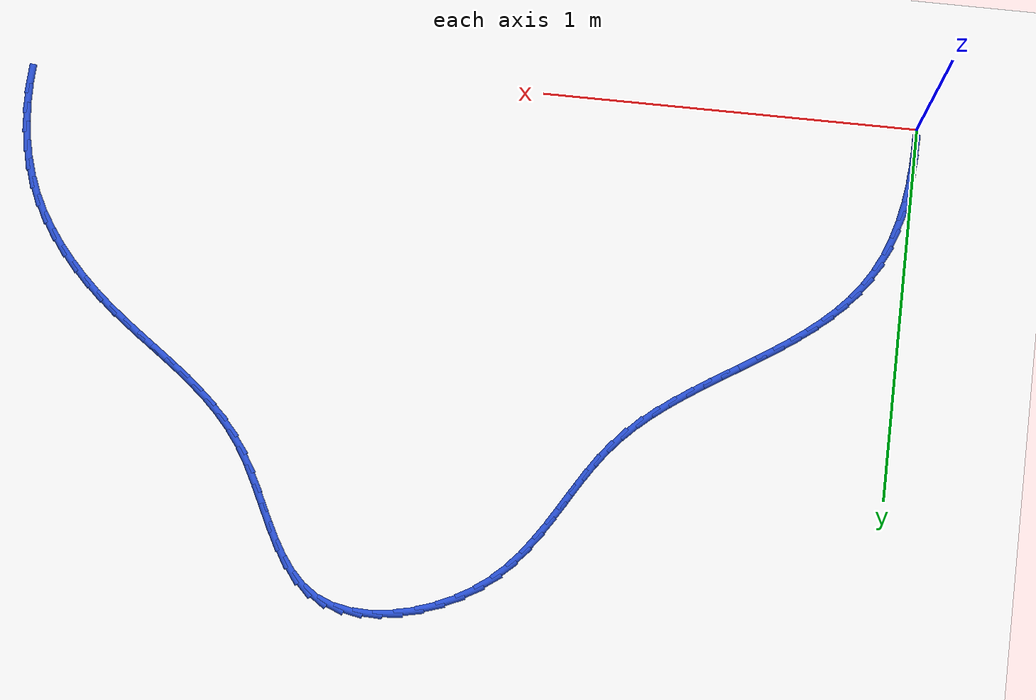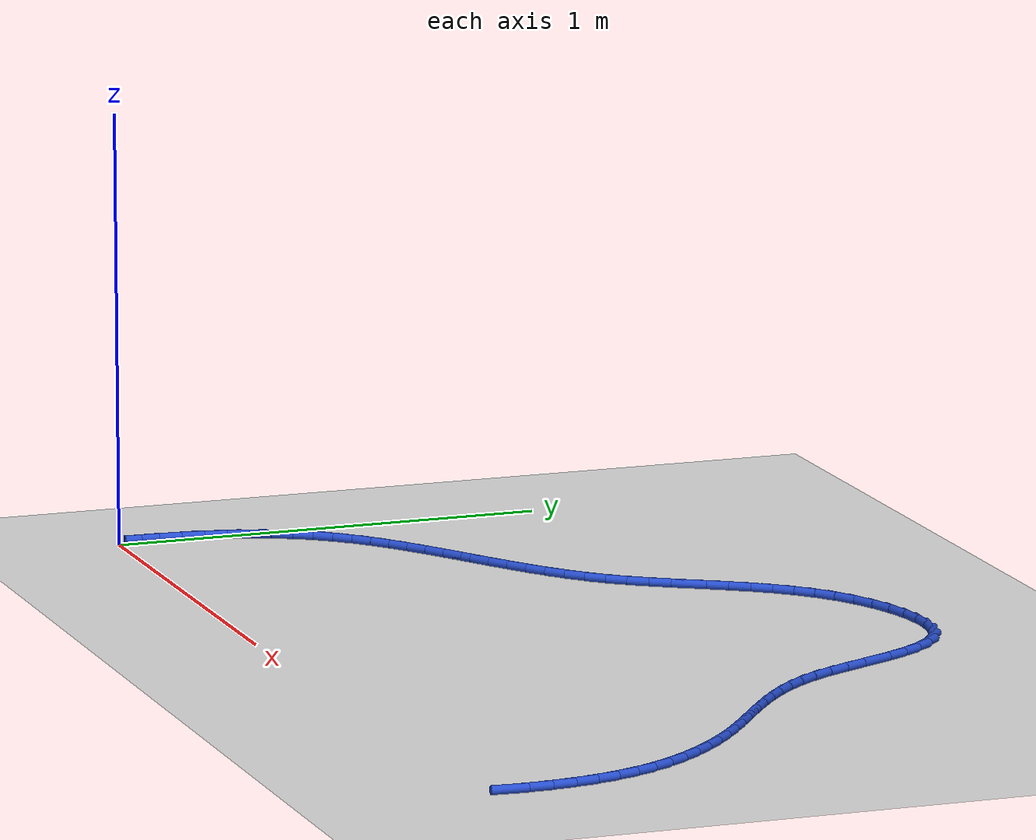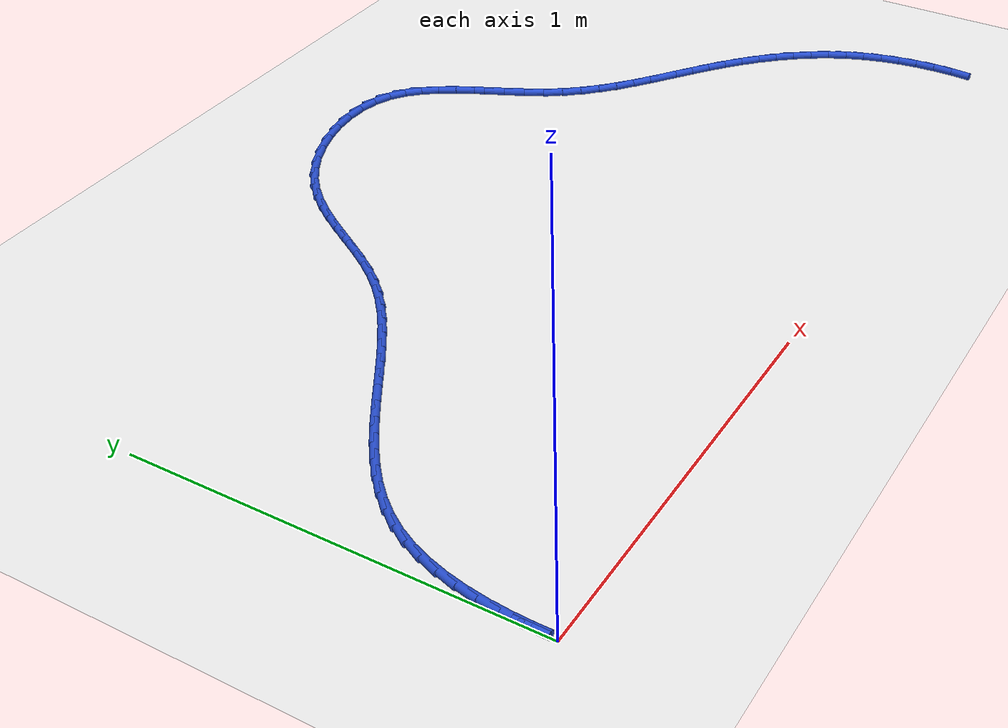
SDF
<sdf version="1.6">
 <world name="default">
  <model name="ground_plane">
   <static>1</static>
   <link name="link">
    <collision name="collision">
     <geometry><plane><normal>0 0 1</normal><size>100 100</size></plane></geometry>
     <surface><friction><ode><mu>100</mu><mu2>50</mu2></ode></friction></surface>
    </collision>
    <visual name="visual">
     <cast_shadows>0</cast_shadows>
     <geometry><plane><normal>0 0 1</normal><size>100 100</size></plane></geometry>
     <material>
      <script><uri>file://media/materials/scripts/gazebo.material</uri><name>Gazebo/WhiteGlow</name></script>
     </material>
    </visual>
   </link>
  </model>
  <model name="line">
   <link name="link_1">
    <pose>6.664217000441556e-05 0.05335885717946945 0.01 0 1.57 1.5253324503397185</pose>
    <collision name="collision">
     <geometry><cylinder><radius>0.01</radius><length>0.08</length></cylinder></geometry>
    </collision>
    <visual name="visual">
     <material>
      <script><name>Gazebo/Blue</name><uri>file://media/materials/scripts/gazebo.material</uri></script>
     </material>
     <geometry><cylinder><radius>0.01</radius><length>0.08</length></cylinder></geometry>
    </visual>
   </link>
   <link name="link_2">
    <pose>0.0024877650991116233 0.1065759333099808 0.01 0 1.57 1.4750725910085734</pose>
    <collision name="collision">
     <geometry><cylinder><radius>0.01</radius><length>0.08</length></cylinder></geometry>
    </collision>
    <visual name="visual">
     <material>
      <script><name>Gazebo/Blue</name><uri>file://media/materials/scripts/gazebo.material</uri></script>
     </material>
     <geometry><cylinder><radius>0.01</radius><length>0.08</length></cylinder></geometry>
    </visual>
   </link>
   <link name="link_3">
    <pose>0.007543831695108891 0.15923386755550145 0.01 0 1.57 1.4177598399902247</pose>
    <collision name="collision">
     <geometry><cylinder><radius>0.01</radius><length>0.08</length></cylinder></geometry>
    </collision>
    <visual name="visual">
     <material>
      <script><name>Gazebo/Blue</name><uri>file://media/materials/scripts/gazebo.material</uri></script>
     </material>
     <geometry><cylinder><radius>0.01</radius><length>0.08</length></cylinder></geometry>
    </visual>
   </link>
   <link name="link_4">
    <pose>0.01551530486578349 0.2109152990799988 0.01 0 1.57 1.3522727773023824</pose>
    <collision name="collision">
     <geometry><cylinder><radius>0.01</radius><length>0.08</length></cylinder></geometry>
    </collision>
    <visual name="visual">
     <material>
      <script><name>Gazebo/Blue</name><uri>file://media/materials/scripts/gazebo.material</uri></script>
     </material>
     <geometry><cylinder><radius>0.01</radius><length>0.08</length></cylinder></geometry>
    </visual>
   </link>
   <link name="link_5">
    <pose>0.02668264751892268 0.2612028670474401 0.01 0 1.57 1.2774334815352066</pose>
    <collision name="collision">
     <geometry><cylinder><radius>0.01</radius><length>0.08</length></cylinder></geometry>
    </collision>
    <visual name="visual">
     <material>
      <script><name>Gazebo/Blue</name><uri>file://media/materials/scripts/gazebo.material</uri></script>
     </material>
     <geometry><cylinder><radius>0.01</radius><length>0.08</length></cylinder></geometry>
    </visual>
   </link>
   <link name="link_6">
    <pose>0.04132632256231374 0.3096792106217928 0.01 0 1.57 1.1921298426804492</pose>
    <collision name="collision">
     <geometry><cylinder><radius>0.01</radius><length>0.08</length></cylinder></geometry>
    </collision>
    <visual name="visual">
     <material>
      <script><name>Gazebo/Blue</name><uri>file://media/materials/scripts/gazebo.material</uri></script>
     </material>
     <geometry><cylinder><radius>0.01</radius><length>0.08</length></cylinder></geometry>
    </visual>
   </link>
   <link name="link_7">
    <pose>0.059726792903743955 0.35592696896702414 0.01 0 1.57 1.0955327764226392</pose>
    <collision name="collision">
     <geometry><cylinder><radius>0.01</radius><length>0.08</length></cylinder></geometry>
    </collision>
    <visual name="visual">
     <material>
      <script><name>Gazebo/Blue</name><uri>file://media/materials/scripts/gazebo.material</uri></script>
     </material>
     <geometry><cylinder><radius>0.01</radius><length>0.08</length></cylinder></geometry>
    </visual>
   </link>
   <link name="link_8">
    <pose>0.08216452145100056 0.3995287812471016 0.01 0 1.57 0.9894931462684846</pose>
    <collision name="collision">
     <geometry><cylinder><radius>0.01</radius><length>0.08</length></cylinder></geometry>
    </collision>
    <visual name="visual">
     <material>
      <script><name>Gazebo/Blue</name><uri>file://media/materials/scripts/gazebo.material</uri></script>
     </material>
     <geometry><cylinder><radius>0.01</radius><length>0.08</length></cylinder></geometry>
    </visual>
   </link>
   <link name="link_9">
    <pose>0.10884792280902796 0.440140770804454 0.01 0 1.57 0.8891535947270818</pose>
    <collision name="collision">
     <geometry><cylinder><radius>0.01</radius><length>0.08</length></cylinder></geometry>
    </collision>
    <visual name="visual">
     <material>
      <script><name>Gazebo/Blue</name><uri>file://media/materials/scripts/gazebo.material</uri></script>
     </material>
     <geometry><cylinder><radius>0.01</radius><length>0.08</length></cylinder></geometry>
    </visual>
   </link>
   <link name="link_10">
    <pose>0.13949811685095032 0.4779160671790674 0.01 0 1.57 0.8021239914455112</pose>
    <collision name="collision">
     <geometry><cylinder><radius>0.01</radius><length>0.08</length></cylinder></geometry>
    </collision>
    <visual name="visual">
     <material>
      <script><name>Gazebo/Blue</name><uri>file://media/materials/scripts/gazebo.material</uri></script>
     </material>
     <geometry><cylinder><radius>0.01</radius><length>0.08</length></cylinder></geometry>
    </visual>
   </link>
   <link name="link_11">
    <pose>0.1736343247894883 0.5132137222797671 0.01 0 1.57 0.7291288467077437</pose>
    <collision name="collision">
     <geometry><cylinder><radius>0.01</radius><length>0.08</length></cylinder></geometry>
    </collision>
    <visual name="visual">
     <material>
      <script><name>Gazebo/Blue</name><uri>file://media/materials/scripts/gazebo.material</uri></script>
     </material>
     <geometry><cylinder><radius>0.01</radius><length>0.08</length></cylinder></geometry>
    </visual>
   </link>
   <link name="link_12">
    <pose>0.21077512020834177 0.5463934485512226 0.01 0 1.57 0.6699624332969081</pose>
    <collision name="collision">
     <geometry><cylinder><radius>0.01</radius><length>0.08</length></cylinder></geometry>
    </collision>
    <visual name="visual">
     <material>
      <script><name>Gazebo/Blue</name><uri>file://media/materials/scripts/gazebo.material</uri></script>
     </material>
     <geometry><cylinder><radius>0.01</radius><length>0.08</length></cylinder></geometry>
    </visual>
   </link>
   <link name="link_13">
    <pose>0.2504390766912106 0.5778149584381033 0.01 0 1.57 0.6239426441694352</pose>
    <collision name="collision">
     <geometry><cylinder><radius>0.01</radius><length>0.08</length></cylinder></geometry>
    </collision>
    <visual name="visual">
     <material>
      <script><name>Gazebo/Blue</name><uri>file://media/materials/scripts/gazebo.material</uri></script>
     </material>
     <geometry><cylinder><radius>0.01</radius><length>0.08</length></cylinder></geometry>
    </visual>
   </link>
   <link name="link_14">
    <pose>0.29214476782179455 0.6078379643850781 0.01 0 1.57 0.5902428545565552</pose>
    <collision name="collision">
     <geometry><cylinder><radius>0.01</radius><length>0.08</length></cylinder></geometry>
    </collision>
    <visual name="visual">
     <material>
      <script><name>Gazebo/Blue</name><uri>file://media/materials/scripts/gazebo.material</uri></script>
     </material>
     <geometry><cylinder><radius>0.01</radius><length>0.08</length></cylinder></geometry>
    </visual>
   </link>
   <link name="link_15">
    <pose>0.33541076718379365 0.6368221788368166 0.01 0 1.57 0.5681030035859348</pose>
    <collision name="collision">
     <geometry><cylinder><radius>0.01</radius><length>0.08</length></cylinder></geometry>
    </collision>
    <visual name="visual">
     <material>
      <script><name>Gazebo/Blue</name><uri>file://media/materials/scripts/gazebo.material</uri></script>
     </material>
     <geometry><cylinder><radius>0.01</radius><length>0.08</length></cylinder></geometry>
    </visual>
   </link>
   <link name="link_16">
    <pose>0.3797556483609077 0.6651273142379881 0.01 0 1.57 0.5569464916758549</pose>
    <collision name="collision">
     <geometry><cylinder><radius>0.01</radius><length>0.08</length></cylinder></geometry>
    </collision>
    <visual name="visual">
     <material>
      <script><name>Gazebo/Blue</name><uri>file://media/materials/scripts/gazebo.material</uri></script>
     </material>
     <geometry><cylinder><radius>0.01</radius><length>0.08</length></cylinder></geometry>
    </visual>
   </link>
   <link name="link_17">
    <pose>0.4246979849368365 0.6931130830332618 0.01 0 1.57 0.5564360823354563</pose>
    <collision name="collision">
     <geometry><cylinder><radius>0.01</radius><length>0.08</length></cylinder></geometry>
    </collision>
    <visual name="visual">
     <material>
      <script><name>Gazebo/Blue</name><uri>file://media/materials/scripts/gazebo.material</uri></script>
     </material>
     <geometry><cylinder><radius>0.01</radius><length>0.08</length></cylinder></geometry>
    </visual>
   </link>
   <link name="link_18">
    <pose>0.4697563504952801 0.7211391976673073 0.01 0 1.57 0.5664933742057492</pose>
    <collision name="collision">
     <geometry><cylinder><radius>0.01</radius><length>0.08</length></cylinder></geometry>
    </collision>
    <visual name="visual">
     <material>
      <script><name>Gazebo/Blue</name><uri>file://media/materials/scripts/gazebo.material</uri></script>
     </material>
     <geometry><cylinder><radius>0.01</radius><length>0.08</length></cylinder></geometry>
    </visual>
   </link>
   <link name="link_19">
    <pose>0.5144493186199381 0.7495653705847937 0.01 0 1.57 0.5872945978435753</pose>
    <collision name="collision">
     <geometry><cylinder><radius>0.01</radius><length>0.08</length></cylinder></geometry>
    </collision>
    <visual name="visual">
     <material>
      <script><name>Gazebo/Blue</name><uri>file://media/materials/scripts/gazebo.material</uri></script>
     </material>
     <geometry><cylinder><radius>0.01</radius><length>0.08</length></cylinder></geometry>
    </visual>
   </link>
   <link name="link_20">
    <pose>0.5582954628945105 0.7787513142303902 0.01 0 1.57 0.6192442989502459</pose>
    <collision name="collision">
     <geometry><cylinder><radius>0.01</radius><length>0.08</length></cylinder></geometry>
    </collision>
    <visual name="visual">
     <material>
      <script><name>Gazebo/Blue</name><uri>file://media/materials/scripts/gazebo.material</uri></script>
     </material>
     <geometry><cylinder><radius>0.01</radius><length>0.08</length></cylinder></geometry>
    </visual>
   </link>
   <link name="link_21">
    <pose>0.6008133569026974 0.8090567410487669 0.01 0 1.57 0.662918092455319</pose>
    <collision name="collision">
     <geometry><cylinder><radius>0.01</radius><length>0.08</length></cylinder></geometry>
    </collision>
    <visual name="visual">
     <material>
      <script><name>Gazebo/Blue</name><uri>file://media/materials/scripts/gazebo.material</uri></script>
     </material>
     <geometry><cylinder><radius>0.01</radius><length>0.08</length></cylinder></geometry>
    </visual>
   </link>
   <link name="link_22">
    <pose>0.6415215742281982 0.8408413634845918 0.01 0 1.57 0.7189561175364033</pose>
    <collision name="collision">
     <geometry><cylinder><radius>0.01</radius><length>0.08</length></cylinder></geometry>
    </collision>
    <visual name="visual">
     <material>
      <script><name>Gazebo/Blue</name><uri>file://media/materials/scripts/gazebo.material</uri></script>
     </material>
     <geometry><cylinder><radius>0.01</radius><length>0.08</length></cylinder></geometry>
    </visual>
   </link>
   <link name="link_23">
    <pose>0.6799386884547134 0.8744648939825357 0.01 0 1.57 0.787882758871669</pose>
    <collision name="collision">
     <geometry><cylinder><radius>0.01</radius><length>0.08</length></cylinder></geometry>
    </collision>
    <visual name="visual">
     <material>
      <script><name>Gazebo/Blue</name><uri>file://media/materials/scripts/gazebo.material</uri></script>
     </material>
     <geometry><cylinder><radius>0.01</radius><length>0.08</length></cylinder></geometry>
    </visual>
   </link>
   <link name="link_24">
    <pose>0.7155832731659421 0.9102870449872666 0.01 0 1.57 0.8683580052310433</pose>
    <collision name="collision">
     <geometry><cylinder><radius>0.01</radius><length>0.08</length></cylinder></geometry>
    </collision>
    <visual name="visual">
     <material>
      <script><name>Gazebo/Blue</name><uri>file://media/materials/scripts/gazebo.material</uri></script>
     </material>
     <geometry><cylinder><radius>0.01</radius><length>0.08</length></cylinder></geometry>
    </visual>
   </link>
   <link name="link_25">
    <pose>0.74803384354409 0.9486236146467142 0.01 0 1.57 0.9406503862185936</pose>
    <collision name="collision">
     <geometry><cylinder><radius>0.01</radius><length>0.08</length></cylinder></geometry>
    </collision>
    <visual name="visual">
     <material>
      <script><name>Gazebo/Blue</name><uri>file://media/materials/scripts/gazebo.material</uri></script>
     </material>
     <geometry><cylinder><radius>0.01</radius><length>0.08</length></cylinder></geometry>
    </visual>
   </link>
   <link name="link_26">
    <pose>0.7776441356674677 0.9892224602910703 0.01 0 1.57 0.9906803434794265</pose>
    <collision name="collision">
     <geometry><cylinder><radius>0.01</radius><length>0.08</length></cylinder></geometry>
    </collision>
    <visual name="visual">
     <material>
      <script><name>Gazebo/Blue</name><uri>file://media/materials/scripts/gazebo.material</uri></script>
     </material>
     <geometry><cylinder><radius>0.01</radius><length>0.08</length></cylinder></geometry>
    </visual>
   </link>
   <link name="link_27">
    <pose>0.8053079621239113 1.0314357694536997 0.01 0 1.57 1.0182208821904566</pose>
    <collision name="collision">
     <geometry><cylinder><radius>0.01</radius><length>0.08</length></cylinder></geometry>
    </collision>
    <visual name="visual">
     <material>
      <script><name>Gazebo/Blue</name><uri>file://media/materials/scripts/gazebo.material</uri></script>
     </material>
     <geometry><cylinder><radius>0.01</radius><length>0.08</length></cylinder></geometry>
    </visual>
   </link>
   <link name="link_28">
    <pose>0.8319301137915331 1.0746076867744034 0.01 0 1.57 1.0236312018721625</pose>
    <collision name="collision">
     <geometry><cylinder><radius>0.01</radius><length>0.08</length></cylinder></geometry>
    </collision>
    <visual name="visual">
     <material>
      <script><name>Gazebo/Blue</name><uri>file://media/materials/scripts/gazebo.material</uri></script>
     </material>
     <geometry><cylinder><radius>0.01</radius><length>0.08</length></cylinder></geometry>
    </visual>
   </link>
   <link name="link_29">
    <pose>0.8584153815484444 1.1180823568929812 0.01 0 1.57 1.0071734314425185</pose>
    <collision name="collision">
     <geometry><cylinder><radius>0.01</radius><length>0.08</length></cylinder></geometry>
    </collision>
    <visual name="visual">
     <material>
      <script><name>Gazebo/Blue</name><uri>file://media/materials/scripts/gazebo.material</uri></script>
     </material>
     <geometry><cylinder><radius>0.01</radius><length>0.08</length></cylinder></geometry>
    </visual>
   </link>
   <link name="link_30">
    <pose>0.8856685562727566 1.1612039244492327 0.01 0 1.57 0.9689371567399715</pose>
    <collision name="collision">
     <geometry><cylinder><radius>0.01</radius><length>0.08</length></cylinder></geometry>
    </collision>
    <visual name="visual">
     <material>
      <script><name>Gazebo/Blue</name><uri>file://media/materials/scripts/gazebo.material</uri></script>
     </material>
     <geometry><cylinder><radius>0.01</radius><length>0.08</length></cylinder></geometry>
    </visual>
   </link>
   <link name="link_31">
    <pose>0.9145944288425811 1.2033165340829577 0.01 0 1.57 0.9090762703867805</pose>
    <collision name="collision">
     <geometry><cylinder><radius>0.01</radius><length>0.08</length></cylinder></geometry>
    </collision>
    <visual name="visual">
     <material>
      <script><name>Gazebo/Blue</name><uri>file://media/materials/scripts/gazebo.material</uri></script>
     </material>
     <geometry><cylinder><radius>0.01</radius><length>0.08</length></cylinder></geometry>
    </visual>
   </link>
   <link name="link_32">
    <pose>0.9460977901360305 1.2437643304339574 0.01 0 1.57 0.8283394405115861</pose>
    <collision name="collision">
     <geometry><cylinder><radius>0.01</radius><length>0.08</length></cylinder></geometry>
    </collision>
    <visual name="visual">
     <material>
      <script><name>Gazebo/Blue</name><uri>file://media/materials/scripts/gazebo.material</uri></script>
     </material>
     <geometry><cylinder><radius>0.01</radius><length>0.08</length></cylinder></geometry>
    </visual>
   </link>
   <link name="link_33">
    <pose>0.9810834310312156 1.2818914581420313 0.01 0 1.57 0.7288038075218347</pose>
    <collision name="collision">
     <geometry><cylinder><radius>0.01</radius><length>0.08</length></cylinder></geometry>
    </collision>
    <visual name="visual">
     <material>
      <script><name>Gazebo/Blue</name><uri>file://media/materials/scripts/gazebo.material</uri></script>
     </material>
     <geometry><cylinder><radius>0.01</radius><length>0.08</length></cylinder></geometry>
    </visual>
   </link>
   <link name="link_34">
    <pose>1.0204561424062486 1.3170420618469798 0.01 0 1.57 0.6165004382844872</pose>
    <collision name="collision">
     <geometry><cylinder><radius>0.01</radius><length>0.08</length></cylinder></geometry>
    </collision>
    <visual name="visual">
     <material>
      <script><name>Gazebo/Blue</name><uri>file://media/materials/scripts/gazebo.material</uri></script>
     </material>
     <geometry><cylinder><radius>0.01</radius><length>0.08</length></cylinder></geometry>
    </visual>
   </link>
   <link name="link_35">
    <pose>1.0649420999111898 1.3485665454878448 0.01 0 1.57 0.5088439998532955</pose>
    <collision name="collision">
     <geometry><cylinder><radius>0.01</radius><length>0.08</length></cylinder></geometry>
    </collision>
    <visual name="visual">
     <material>
      <script><name>Gazebo/Blue</name><uri>file://media/materials/scripts/gazebo.material</uri></script>
     </material>
     <geometry><cylinder><radius>0.01</radius><length>0.08</length></cylinder></geometry>
    </visual>
   </link>
   <link name="link_36">
    <pose>1.1138762444222594 1.375864066712194 0.01 0 1.57 0.4077946887302013</pose>
    <collision name="collision">
     <geometry><cylinder><radius>0.01</radius><length>0.08</length></cylinder></geometry>
    </collision>
    <visual name="visual">
     <material>
      <script><name>Gazebo/Blue</name><uri>file://media/materials/scripts/gazebo.material</uri></script>
     </material>
     <geometry><cylinder><radius>0.01</radius><length>0.08</length></cylinder></geometry>
    </visual>
   </link>
   <link name="link_37">
    <pose>1.165940986674657 1.3983566500947984 0.01 0 1.57 0.3075145787612556</pose>
    <collision name="collision">
     <geometry><cylinder><radius>0.01</radius><length>0.08</length></cylinder></geometry>
    </collision>
    <visual name="visual">
     <material>
      <script><name>Gazebo/Blue</name><uri>file://media/materials/scripts/gazebo.material</uri></script>
     </material>
     <geometry><cylinder><radius>0.01</radius><length>0.08</length></cylinder></geometry>
    </visual>
   </link>
   <link name="link_38">
    <pose>1.2198149849205389 1.4154664517104956 0.01 0 1.57 0.20228657717183465</pose>
    <collision name="collision">
     <geometry><cylinder><radius>0.01</radius><length>0.08</length></cylinder></geometry>
    </collision>
    <visual name="visual">
     <material>
      <script><name>Gazebo/Blue</name><uri>file://media/materials/scripts/gazebo.material</uri></script>
     </material>
     <geometry><cylinder><radius>0.01</radius><length>0.08</length></cylinder></geometry>
    </visual>
   </link>
   <link name="link_39">
    <pose>1.2741768974120609 1.426615627634123 0.01 0 1.57 0.08592348556246679</pose>
    <collision name="collision">
     <geometry><cylinder><radius>0.01</radius><length>0.08</length></cylinder></geometry>
    </collision>
    <visual name="visual">
     <material>
      <script><name>Gazebo/Blue</name><uri>file://media/materials/scripts/gazebo.material</uri></script>
     </material>
     <geometry><cylinder><radius>0.01</radius><length>0.08</length></cylinder></geometry>
    </visual>
   </link>
   <link name="link_40">
    <pose>1.3277053824013783 1.4312263339405178 0.01 0 1.57 -0.04873354622593823</pose>
    <collision name="collision">
     <geometry><cylinder><radius>0.01</radius><length>0.08</length></cylinder></geometry>
    </collision>
    <visual name="visual">
     <material>
      <script><name>Gazebo/Blue</name><uri>file://media/materials/scripts/gazebo.material</uri></script>
     </material>
     <geometry><cylinder><radius>0.01</radius><length>0.08</length></cylinder></geometry>
    </visual>
   </link>
   <link name="link_41">
    <pose>1.379079098140648 1.428720726704518 0.01 0 1.57 -0.20981530748769567</pose>
    <collision name="collision">
     <geometry><cylinder><radius>0.01</radius><length>0.08</length></cylinder></geometry>
    </collision>
    <visual name="visual">
     <material>
      <script><name>Gazebo/Blue</name><uri>file://media/materials/scripts/gazebo.material</uri></script>
     </material>
     <geometry><cylinder><radius>0.01</radius><length>0.08</length></cylinder></geometry>
    </visual>
   </link>
   <link name="link_42">
    <pose>1.4269767028820246 1.418520962000961 0.01 0 1.57 -0.40489712538913775</pose>
    <collision name="collision">
     <geometry><cylinder><radius>0.01</radius><length>0.08</length></cylinder></geometry>
    </collision>
    <visual name="visual">
     <material>
      <script><name>Gazebo/Blue</name><uri>file://media/materials/scripts/gazebo.material</uri></script>
     </material>
     <geometry><cylinder><radius>0.01</radius><length>0.08</length></cylinder></geometry>
    </visual>
   </link>
   <link name="link_43">
    <pose>1.4700768548782919 1.4000491959052153 0.01 0 1.57 -0.6251507552929085</pose>
    <collision name="collision">
     <geometry><cylinder><radius>0.01</radius><length>0.08</length></cylinder></geometry>
    </collision>
    <visual name="visual">
     <material>
      <script><name>Gazebo/Blue</name><uri>file://media/materials/scripts/gazebo.material</uri></script>
     </material>
     <geometry><cylinder><radius>0.01</radius><length>0.08</length></cylinder></geometry>
    </visual>
   </link>
   <link name="link_44">
    <pose>1.507461090694306 1.3730684809265739 0.01 0 1.57 -0.8155432820982105</pose>
    <collision name="collision">
     <geometry><cylinder><radius>0.01</radius><length>0.08</length></cylinder></geometry>
    </collision>
    <visual name="visual">
     <material>
      <script><name>Gazebo/Blue</name><uri>file://media/materials/scripts/gazebo.material</uri></script>
     </material>
     <geometry><cylinder><radius>0.01</radius><length>0.08</length></cylinder></geometry>
    </visual>
   </link>
   <link name="link_45">
    <pose>1.5398168581401075 1.338700715161892 0.01 0 1.57 -0.9566017665198467</pose>
    <collision name="collision">
     <geometry><cylinder><radius>0.01</radius><length>0.08</length></cylinder></geometry>
    </collision>
    <visual name="visual">
     <material>
      <script><name>Gazebo/Blue</name><uri>file://media/materials/scripts/gazebo.material</uri></script>
     </material>
     <geometry><cylinder><radius>0.01</radius><length>0.08</length></cylinder></geometry>
    </visual>
   </link>
   <link name="link_46">
    <pose>1.5682316872013022 1.298406327184449 0.01 0 1.57 -1.0519206408664372</pose>
    <collision name="collision">
     <geometry><cylinder><radius>0.01</radius><length>0.08</length></cylinder></geometry>
    </collision>
    <visual name="visual">
     <material>
      <script><name>Gazebo/Blue</name><uri>file://media/materials/scripts/gazebo.material</uri></script>
     </material>
     <geometry><cylinder><radius>0.01</radius><length>0.08</length></cylinder></geometry>
    </visual>
   </link>
   <link name="link_47">
    <pose>1.5937931078634957 1.2536457455675247 0.01 0 1.57 -1.1086174570124634</pose>
    <collision name="collision">
     <geometry><cylinder><radius>0.01</radius><length>0.08</length></cylinder></geometry>
    </collision>
    <visual name="visual">
     <material>
      <script><name>Gazebo/Blue</name><uri>file://media/materials/scripts/gazebo.material</uri></script>
     </material>
     <geometry><cylinder><radius>0.01</radius><length>0.08</length></cylinder></geometry>
    </visual>
   </link>
   <link name="link_48">
    <pose>1.6175886501122934 1.2058793988843974 0.01 0 1.57 -1.1324208240397309</pose>
    <collision name="collision">
     <geometry><cylinder><radius>0.01</radius><length>0.08</length></cylinder></geometry>
    </collision>
    <visual name="visual">
     <material>
      <script><name>Gazebo/Blue</name><uri>file://media/materials/scripts/gazebo.material</uri></script>
     </material>
     <geometry><cylinder><radius>0.01</radius><length>0.08</length></cylinder></geometry>
    </visual>
   </link>
   <link name="link_49">
    <pose>1.6407058439333004 1.156567715708347 0.01 0 1.57 -1.1263079886998069</pose>
    <collision name="collision">
     <geometry><cylinder><radius>0.01</radius><length>0.08</length></cylinder></geometry>
    </collision>
    <visual name="visual">
     <material>
      <script><name>Gazebo/Blue</name><uri>file://media/materials/scripts/gazebo.material</uri></script>
     </material>
     <geometry><cylinder><radius>0.01</radius><length>0.08</length></cylinder></geometry>
    </visual>
   </link>
   <link name="link_50">
    <pose>1.6642322193121228 1.1071711246126517 0.01 0 1.57 -1.0904229031835548</pose>
    <collision name="collision">
     <geometry><cylinder><radius>0.01</radius><length>0.08</length></cylinder></geometry>
    </collision>
    <visual name="visual">
     <material>
      <script><name>Gazebo/Blue</name><uri>file://media/materials/scripts/gazebo.material</uri></script>
     </material>
     <geometry><cylinder><radius>0.01</radius><length>0.08</length></cylinder></geometry>
    </visual>
   </link>
   <link name="link_51">
    <pose>1.6892553062343658 1.0591500541705918 0.01 0 1.57 -1.0223806855809172</pose>
    <collision name="collision">
     <geometry><cylinder><radius>0.01</radius><length>0.08</length></cylinder></geometry>
    </collision>
    <visual name="visual">
     <material>
      <script><name>Gazebo/Blue</name><uri>file://media/materials/scripts/gazebo.material</uri></script>
     </material>
     <geometry><cylinder><radius>0.01</radius><length>0.08</length></cylinder></geometry>
    </visual>
   </link>
   <link name="link_52">
    <pose>1.7168612485237094 1.0139631108461111 0.01 0 1.57 -0.930736231398435</pose>
    <collision name="collision">
     <geometry><cylinder><radius>0.01</radius><length>0.08</length></cylinder></geometry>
    </collision>
    <visual name="visual">
     <material>
      <script><name>Gazebo/Blue</name><uri>file://media/materials/scripts/gazebo.material</uri></script>
     </material>
     <geometry><cylinder><radius>0.01</radius><length>0.08</length></cylinder></geometry>
    </visual>
   </link>
   <link name="link_53">
    <pose>1.7477199884503813 0.9725218043155802 0.01 0 1.57 -0.8453038112708021</pose>
    <collision name="collision">
     <geometry><cylinder><radius>0.01</radius><length>0.08</length></cylinder></geometry>
    </collision>
    <visual name="visual">
     <material>
      <script><name>Gazebo/Blue</name><uri>file://media/materials/scripts/gazebo.material</uri></script>
     </material>
     <geometry><cylinder><radius>0.01</radius><length>0.08</length></cylinder></geometry>
    </visual>
   </link>
   <link name="link_54">
    <pose>1.7815040798169304 0.9344265774847251 0.01 0 1.57 -0.772899238820326</pose>
    <collision name="collision">
     <geometry><cylinder><radius>0.01</radius><length>0.08</length></cylinder></geometry>
    </collision>
    <visual name="visual">
     <material>
      <script><name>Gazebo/Blue</name><uri>file://media/materials/scripts/gazebo.material</uri></script>
     </material>
     <geometry><cylinder><radius>0.01</radius><length>0.08</length></cylinder></geometry>
    </visual>
   </link>
   <link name="link_55">
    <pose>1.8177397753169198 0.8990855605057954 0.01 0 1.57 -0.714990599709199</pose>
    <collision name="collision">
     <geometry><cylinder><radius>0.01</radius><length>0.08</length></cylinder></geometry>
    </collision>
    <visual name="visual">
     <material>
      <script><name>Gazebo/Blue</name><uri>file://media/materials/scripts/gazebo.material</uri></script>
     </material>
     <geometry><cylinder><radius>0.01</radius><length>0.08</length></cylinder></geometry>
    </visual>
   </link>
   <link name="link_56">
    <pose>1.8559533276439113 0.8659068835310403 0.01 0 1.57 -0.6721884574658633</pose>
    <collision name="collision">
     <geometry><cylinder><radius>0.01</radius><length>0.08</length></cylinder></geometry>
    </collision>
    <visual name="visual">
     <material>
      <script><name>Gazebo/Blue</name><uri>file://media/materials/scripts/gazebo.material</uri></script>
     </material>
     <geometry><cylinder><radius>0.01</radius><length>0.08</length></cylinder></geometry>
    </visual>
   </link>
   <link name="link_57">
    <pose>1.8956709894914667 0.834298676712709 0.01 0 1.57 -0.6445775085181882</pose>
    <collision name="collision">
     <geometry><cylinder><radius>0.01</radius><length>0.08</length></cylinder></geometry>
    </collision>
    <visual name="visual">
     <material>
      <script><name>Gazebo/Blue</name><uri>file://media/materials/scripts/gazebo.material</uri></script>
     </material>
     <geometry><cylinder><radius>0.01</radius><length>0.08</length></cylinder></geometry>
    </visual>
   </link>
   <link name="link_58">
    <pose>1.9364190135531498 0.8036690702030509 0.01 0 1.57 -0.6320054437416739</pose>
    <collision name="collision">
     <geometry><cylinder><radius>0.01</radius><length>0.08</length></cylinder></geometry>
    </collision>
    <visual name="visual">
     <material>
      <script><name>Gazebo/Blue</name><uri>file://media/materials/scripts/gazebo.material</uri></script>
     </material>
     <geometry><cylinder><radius>0.01</radius><length>0.08</length></cylinder></geometry>
    </visual>
   </link>
   <link name="link_59">
    <pose>1.9777236525225201 0.7734261941543157 0.01 0 1.57 -0.6342739955631425</pose>
    <collision name="collision">
     <geometry><cylinder><radius>0.01</radius><length>0.08</length></cylinder></geometry>
    </collision>
    <visual name="visual">
     <material>
      <script><name>Gazebo/Blue</name><uri>file://media/materials/scripts/gazebo.material</uri></script>
     </material>
     <geometry><cylinder><radius>0.01</radius><length>0.08</length></cylinder></geometry>
    </visual>
   </link>
   <link name="link_60">
    <pose>2.019111159093141 0.7429781787187526 0.01 0 1.57 -0.6512233123907576</pose>
    <collision name="collision">
     <geometry><cylinder><radius>0.01</radius><length>0.08</length></cylinder></geometry>
    </collision>
    <visual name="visual">
     <material>
      <script><name>Gazebo/Blue</name><uri>file://media/materials/scripts/gazebo.material</uri></script>
     </material>
     <geometry><cylinder><radius>0.01</radius><length>0.08</length></cylinder></geometry>
    </visual>
   </link>
   <link name="link_61">
    <pose>2.060107785958576 0.7117331540486113 0.01 0 1.57 -0.6827106466123564</pose>
    <collision name="collision">
     <geometry><cylinder><radius>0.01</radius><length>0.08</length></cylinder></geometry>
    </collision>
    <visual name="visual">
     <material>
      <script><name>Gazebo/Blue</name><uri>file://media/materials/scripts/gazebo.material</uri></script>
     </material>
     <geometry><cylinder><radius>0.01</radius><length>0.08</length></cylinder></geometry>
    </visual>
   </link>
   <link name="link_62">
    <pose>2.100239814370191 0.6790996160182421 0.01 0 1.57 -0.7261479364947004</pose>
    <collision name="collision">
     <geometry><cylinder><radius>0.01</radius><length>0.08</length></cylinder></geometry>
    </collision>
    <visual name="visual">
     <material>
      <script><name>Gazebo/Blue</name><uri>file://media/materials/scripts/gazebo.material</uri></script>
     </material>
     <geometry><cylinder><radius>0.01</radius><length>0.08</length></cylinder></geometry>
    </visual>
   </link>
   <link name="link_63">
    <pose>2.1390455433337525 0.6446399644314451 0.01 0 1.57 -0.7756309951111536</pose>
    <collision name="collision">
     <geometry><cylinder><radius>0.01</radius><length>0.08</length></cylinder></geometry>
    </collision>
    <visual name="visual">
     <material>
      <script><name>Gazebo/Blue</name><uri>file://media/materials/scripts/gazebo.material</uri></script>
     </material>
     <geometry><cylinder><radius>0.01</radius><length>0.08</length></cylinder></geometry>
    </visual>
   </link>
   <link name="link_64">
    <pose>2.176093864486659 0.6083083799574216 0.01 0 1.57 -0.830858863072188</pose>
    <collision name="collision">
     <geometry><cylinder><radius>0.01</radius><length>0.08</length></cylinder></geometry>
    </collision>
    <visual name="visual">
     <material>
      <script><name>Gazebo/Blue</name><uri>file://media/materials/scripts/gazebo.material</uri></script>
     </material>
     <geometry><cylinder><radius>0.01</radius><length>0.08</length></cylinder></geometry>
    </visual>
   </link>
   <link name="link_65">
    <pose>2.21095846606959 0.5701204703896781 0.01 0 1.57 -0.8925363238286338</pose>
    <collision name="collision">
     <geometry><cylinder><radius>0.01</radius><length>0.08</length></cylinder></geometry>
    </collision>
    <visual name="visual">
     <material>
      <script><name>Gazebo/Blue</name><uri>file://media/materials/scripts/gazebo.material</uri></script>
     </material>
     <geometry><cylinder><radius>0.01</radius><length>0.08</length></cylinder></geometry>
    </visual>
   </link>
   <link name="link_66">
    <pose>2.243213036323226 0.5300918435217211 0.01 0 1.57 -0.9613445193581414</pose>
    <collision name="collision">
     <geometry><cylinder><radius>0.01</radius><length>0.08</length></cylinder></geometry>
    </collision>
    <visual name="visual">
     <material>
      <script><name>Gazebo/Blue</name><uri>file://media/materials/scripts/gazebo.material</uri></script>
     </material>
     <geometry><cylinder><radius>0.01</radius><length>0.08</length></cylinder></geometry>
    </visual>
   </link>
   <link name="link_67">
    <pose>2.2724312634882455 0.4882381071470561 0.01 0 1.57 -1.0378597064188972</pose>
    <collision name="collision">
     <geometry><cylinder><radius>0.01</radius><length>0.08</length></cylinder></geometry>
    </collision>
    <visual name="visual">
     <material>
      <script><name>Gazebo/Blue</name><uri>file://media/materials/scripts/gazebo.material</uri></script>
     </material>
     <geometry><cylinder><radius>0.01</radius><length>0.08</length></cylinder></geometry>
    </visual>
   </link>
   <link name="link_68">
    <pose>2.298186835805331 0.44457486905919097 0.01 0 1.57 -1.1224304173334703</pose>
    <collision name="collision">
     <geometry><cylinder><radius>0.01</radius><length>0.08</length></cylinder></geometry>
    </collision>
    <visual name="visual">
     <material>
      <script><name>Gazebo/Blue</name><uri>file://media/materials/scripts/gazebo.material</uri></script>
     </material>
     <geometry><cylinder><radius>0.01</radius><length>0.08</length></cylinder></geometry>
    </visual>
   </link>
   <link name="link_69">
    <pose>2.3200535700337492 0.3991177824876608 0.01 0 1.57 -1.2121285092722933</pose>
    <collision name="collision">
     <geometry><cylinder><radius>0.01</radius><length>0.08</length></cylinder></geometry>
    </collision>
    <visual name="visual">
     <material>
      <script><name>Gazebo/Blue</name><uri>file://media/materials/scripts/gazebo.material</uri></script>
     </material>
     <geometry><cylinder><radius>0.01</radius><length>0.08</length></cylinder></geometry>
    </visual>
   </link>
   <link name="link_70">
    <pose>2.3377430063213276 0.351931190925309 0.01 0 1.57 -1.2980858838007057</pose>
    <collision name="collision">
     <geometry><cylinder><radius>0.01</radius><length>0.08</length></cylinder></geometry>
    </collision>
    <visual name="visual">
     <material>
      <script><name>Gazebo/Blue</name><uri>file://media/materials/scripts/gazebo.material</uri></script>
     </material>
     <geometry><cylinder><radius>0.01</radius><length>0.08</length></cylinder></geometry>
    </visual>
   </link>
   <link name="link_71">
    <pose>2.3513662754836653 0.30322070780491533 0.01 0 1.57 -1.3784124267918456</pose>
    <collision name="collision">
     <geometry><cylinder><radius>0.01</radius><length>0.08</length></cylinder></geometry>
    </collision>
    <visual name="visual">
     <material>
      <script><name>Gazebo/Blue</name><uri>file://media/materials/scripts/gazebo.material</uri></script>
     </material>
     <geometry><cylinder><radius>0.01</radius><length>0.08</length></cylinder></geometry>
    </visual>
   </link>
   <link name="link_72">
    <pose>2.361106567945751 0.25321742227106026 0.01 0 1.57 -1.4530529351187311</pose>
    <collision name="collision">
     <geometry><cylinder><radius>0.01</radius><length>0.08</length></cylinder></geometry>
    </collision>
    <visual name="visual">
     <material>
      <script><name>Gazebo/Blue</name><uri>file://media/materials/scripts/gazebo.material</uri></script>
     </material>
     <geometry><cylinder><radius>0.01</radius><length>0.08</length></cylinder></geometry>
    </visual>
   </link>
   <link name="link_73">
    <pose>2.3671470741325717 0.2021524234683227 0.01 0 1.57 -1.5222002588055192</pose>
    <collision name="collision">
     <geometry><cylinder><radius>0.01</radius><length>0.08</length></cylinder></geometry>
    </collision>
    <visual name="visual">
     <material>
      <script><name>Gazebo/Blue</name><uri>file://media/materials/scripts/gazebo.material</uri></script>
     </material>
     <geometry><cylinder><radius>0.01</radius><length>0.08</length></cylinder></geometry>
    </visual>
   </link>
   <link name="link_74">
    <pose>2.3696709844691153 0.15025680054128246 0.01 0 1.57 1.5553771725827126</pose>
    <collision name="collision">
     <geometry><cylinder><radius>0.01</radius><length>0.08</length></cylinder></geometry>
    </collision>
    <visual name="visual">
     <material>
      <script><name>Gazebo/Blue</name><uri>file://media/materials/scripts/gazebo.material</uri></script>
     </material>
     <geometry><cylinder><radius>0.01</radius><length>0.08</length></cylinder></geometry>
    </visual>
   </link>
   <link name="link_75">
    <pose>2.36886148938037 0.09776164263451902 0.01 0 1.57 1.4960316659950188</pose>
    <collision name="collision">
     <geometry><cylinder><radius>0.01</radius><length>0.08</length></cylinder></geometry>
    </collision>
    <visual name="visual">
     <material>
      <script><name>Gazebo/Blue</name><uri>file://media/materials/scripts/gazebo.material</uri></script>
     </material>
     <geometry><cylinder><radius>0.01</radius><length>0.08</length></cylinder></geometry>
    </visual>
   </link>
   <link name="link_151">
    <pose>3.6143593251901363e-06 0.05339257907522861 0.01 0 1.57 1.5707286327560945</pose>
    <collision name="collision">
     <geometry><cylinder><radius>0.01</radius><length>0.08</length></cylinder></geometry>
    </collision>
    <visual name="visual">
     <material>
      <script><name>Gazebo/Blue</name><uri>file://media/materials/scripts/gazebo.material</uri></script>
     </material>
     <geometry><cylinder><radius>0.01</radius><length>0.08</length></cylinder></geometry>
    </visual>
   </link>
  </model>
 </world>
</sdf>
